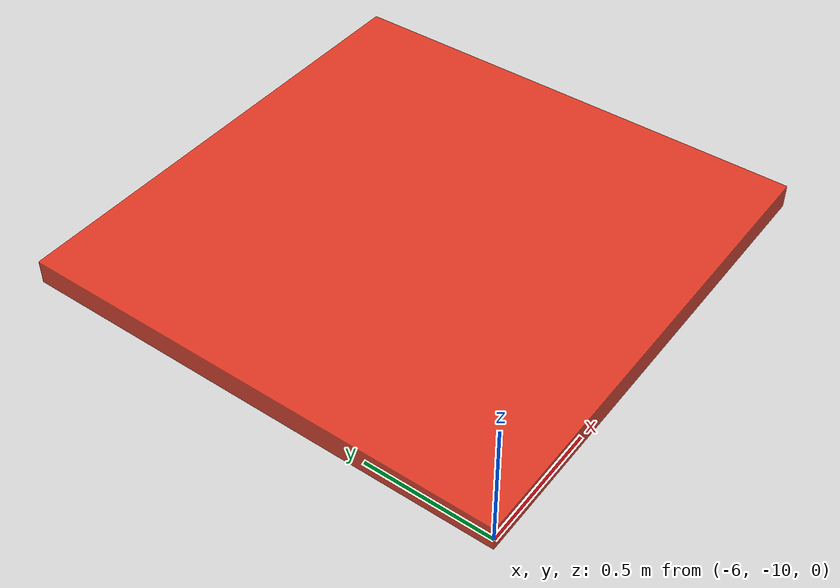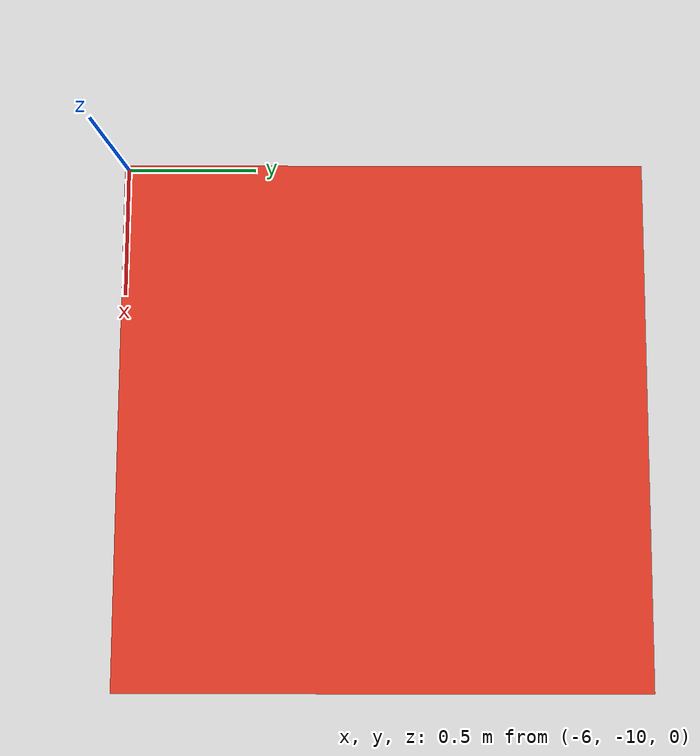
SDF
<sdf version="1.6">
  <model name="tile_-3_-5">
    <pose>-5 -9 0 0 0 0</pose>
      <link name="tile_-3_-5">
        <pose>0 0 0 0 -0 0</pose>
        <inertial>
          <mass>260.134</mass>
          <inertia>
            <ixx>86.8209</ixx>
            <ixy>0</ixy>
            <ixz>0</ixz>
            <iyy>86.8213</iyy>
            <iyz>0</iyz>
            <izz>173.423</izz>
          </inertia>
          <pose>0 0 0 0 -0 0</pose>
        </inertial>
        <visual name='visual'>
          <geometry>
            <box>
              <size>2 2 0.1</size>
            </box>
          </geometry>
          <material>
            <ambient>0.9 0.1 0 0.8</ambient>
            <diffuse>0.9 0.1 0 0.8</diffuse>
            <specular>0.9 0.1 0 0.8</specular>
          </material>
        </visual>
        <collision name='collision'>
          <geometry>
            <box>
              <size>2 2 0.1</size>
            </box>
          </geometry>
          <surface>
            <friction>
              <ode>
                <mu>28.999999999999996</mu>
                <mu2>78.0</mu2>
              </ode>
            </friction>
            <bounce/>
            <contact/>
          </surface>
        </collision>
        <enable_wind>false</enable_wind>
      </link>
  </model>
</sdf>
